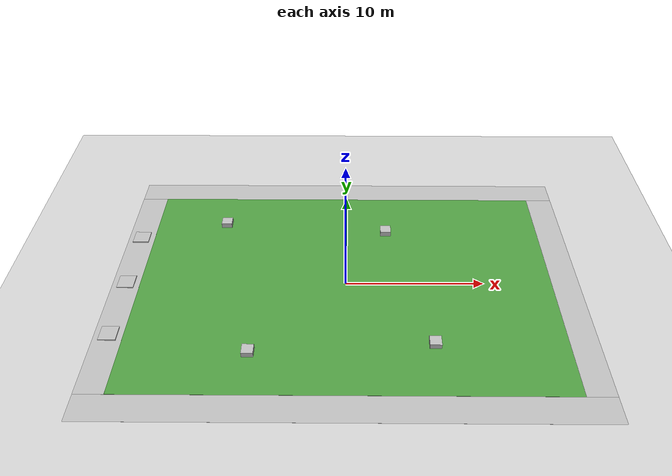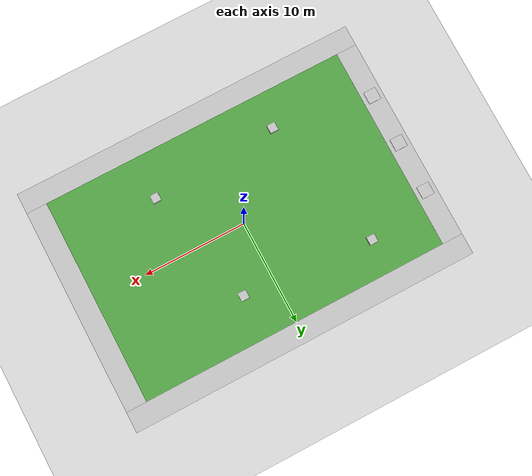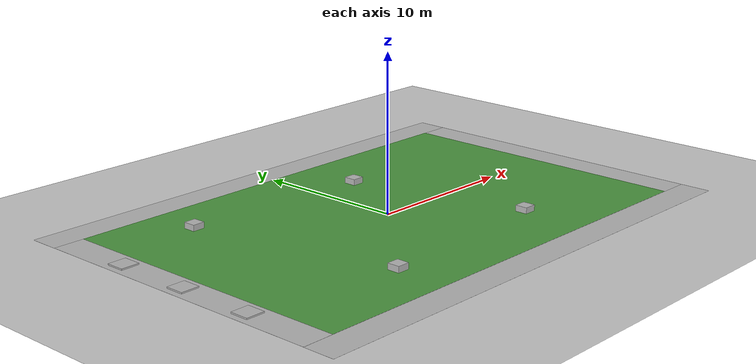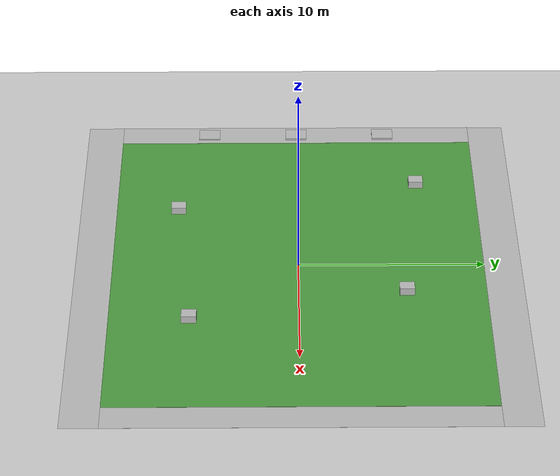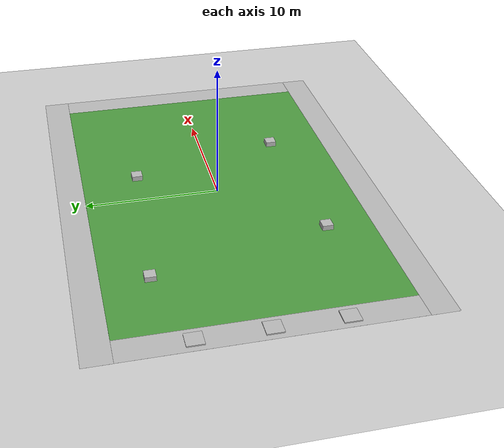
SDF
<sdf version="1.7">
 <world name="default">
  <light name="sun" type="directional">
   <pose>0 0 10 0 -0 0</pose>
   <diffuse>0.8 0.8 0.8 1</diffuse>
   <specular>0.2 0.2 0.2 1</specular>
   <attenuation>
    <range>1000</range>
    <constant>0.9</constant>
    <linear>0.01</linear>
    <quadratic>0.001</quadratic>
   </attenuation>
   <direction>-0.5 0.1 -0.9</direction>
   <spot><inner_angle>0</inner_angle><outer_angle>0</outer_angle><falloff>0</falloff></spot>
  </light>
  <model name="ground_plane">
   <static>1</static>
   <link name="link">
    <collision name="collision">
     <geometry><plane><normal>0 0 1</normal><size>100 100</size></plane></geometry>
     <surface><friction><ode><mu>100</mu><mu2>50</mu2></ode></friction></surface>
    </collision>
    <visual name="visual">
     <cast_shadows>0</cast_shadows>
     <geometry><plane><normal>0 0 1</normal><size>100 100</size></plane></geometry>
     <material>
      <script><uri>file://media/materials/scripts/gazebo.material</uri><name>Gazebo/Grey</name></script>
     </material>
    </visual>
   </link>
  </model>
  <model name="robocup_3d_field">
   <static>1</static>
   <link name="field">
    <pose>0 0 0.01 0 -0 0</pose>
    <collision name="collision">
     <geometry><plane><normal>0 0 1</normal><size>30 20</size></plane></geometry>
     <surface><friction><ode><mu>100</mu><mu2>50</mu2></ode></friction></surface>
    </collision>
    <visual name="base1">
     <pose>0 11 0.001 0 -0 0</pose>
     <cast_shadows>0</cast_shadows>
     <geometry><plane><normal>0 0 1</normal><size>34 2</size></plane></geometry>
     <material>
      <script>
       <uri>model://robocup_3Dsim_field/materials/scripts/</uri>
       <uri>model://robocup_3Dsim_field/materials/textures/</uri>
       <name>RoboCup/FieldBorder</name>
      </script>
     </material>
    </visual>
    <visual name="base2">
     <pose>0 -11 0.001 0 -0 0</pose>
     <cast_shadows>0</cast_shadows>
     <geometry><plane><normal>0 0 1</normal><size>34 2</size></plane></geometry>
     <material>
      <script>
       <uri>model://robocup_3Dsim_field/materials/scripts/</uri>
       <uri>model://robocup_3Dsim_field/materials/textures/</uri>
       <name>RoboCup/FieldBorder</name>
      </script>
     </material>
    </visual>
    <visual name="base3">
     <pose>16 0 0.001 0 -0 0</pose>
     <cast_shadows>0</cast_shadows>
     <geometry><plane><normal>0 0 1</normal><size>2 20</size></plane></geometry>
     <material>
      <script>
       <uri>model://robocup_3Dsim_field/materials/scripts/</uri>
       <uri>model://robocup_3Dsim_field/materials/textures/</uri>
       <name>RoboCup/FieldBorder</name>
      </script>
     </material>
    </visual>
    <visual name="base4">
     <pose>-16 0 0.01 0 -0 0</pose>
     <cast_shadows>0</cast_shadows>
     <geometry><plane><normal>0 0 1</normal><size>2 20</size></plane></geometry>
     <material>
      <script>
       <uri>model://robocup_3Dsim_field/materials/scripts/</uri>
       <uri>model://robocup_3Dsim_field/materials/textures/</uri>
       <name>RoboCup/FieldBorder</name>
      </script>
     </material>
    </visual>
    <visual name="carpet">
     <cast_shadows>0</cast_shadows>
     <geometry><plane><normal>0 0 1</normal><size>30 20</size></plane></geometry>
     <material>
      <script>
       <uri>model://robocup_3Dsim_field/materials/scripts/</uri>
       <uri>model://robocup_3Dsim_field/materials/textures/</uri>
       <name>RoboCup/Grass</name>
      </script>
     </material>
    </visual>
   </link>
   <pose>0 0 0.001 0 -0 0</pose>
  </model>
  <model name="number1">
   <pose>-6.41575 -6.57118 0.01 0 -0 3.14</pose>
   <static>1</static>
   <link name="link">
    <visual name="visual">
     <geometry><mesh><uri>model://number1/meshes/number.dae</uri></mesh></geometry>
     <material>
      <script>
       <uri>model://number1/materials/scripts</uri>
       <uri>model://number1/materials/textures</uri>
       <name>Number/One</name>
      </script>
     </material>
    </visual>
   </link>
  </model>
  <model name="number2">
   <pose>-9.50624 6.68296 0.01 0 -0 3.14</pose>
   <static>1</static>
   <link name="link">
    <visual name="visual">
     <geometry><mesh><uri>model://number1/meshes/number.dae</uri></mesh></geometry>
     <material>
      <script>
       <uri>model://number2/materials/scripts</uri>
       <uri>model://number2/materials/textures</uri>
       <name>Number/Two</name>
      </script>
     </material>
    </visual>
   </link>
  </model>
  <model name="number3">
   <pose>6.0077 -5.7695 0.01 0 -0 3.14</pose>
   <static>1</static>
   <link name="link">
    <visual name="visual">
     <geometry><mesh><uri>model://number1/meshes/number.dae</uri></mesh></geometry>
     <material>
      <script>
       <uri>model://number3/materials/scripts</uri>
       <uri>model://number3/materials/textures</uri>
       <name>Number/Three</name>
      </script>
     </material>
    </visual>
   </link>
  </model>
  <model name="number4">
   <pose>3.07634 5.74653 0.01 0 -0 3.14</pose>
   <static>1</static>
   <link name="link">
    <visual name="visual">
     <geometry><mesh><uri>model://number1/meshes/number.dae</uri></mesh></geometry>
     <material>
      <script>
       <uri>model://number4/materials/scripts</uri>
       <uri>model://number4/materials/textures</uri>
       <name>Number/Four</name>
      </script>
     </material>
    </visual>
   </link>
  </model>
  <model name="box_target_green">
   <pose>-16 -5 0.06 0 -0 3.14</pose>
   <static>1</static>
   <link name="link">
    <collision name="collision"><geometry><box><size>1.2 1.2 0.1</size></box></geometry></collision>
    <visual name="visual">
     <geometry>
      <mesh><uri>model://box_target_green/meshes/mesh.dae</uri><scale>0.2 0.2 0.05</scale></mesh>
     </geometry>
    </visual>
   </link>
  </model>
  <model name="box_target_green_0">
   <pose>-16 0 0.06 0 -0 3.14</pose>
   <static>1</static>
   <link name="link">
    <collision name="collision"><geometry><box><size>1.2 1.2 0.1</size></box></geometry></collision>
    <visual name="visual">
     <geometry>
      <mesh><uri>model://box_target_green/meshes/mesh.dae</uri><scale>0.2 0.2 0.05</scale></mesh>
     </geometry>
    </visual>
   </link>
  </model>
  <model name="box_target_green_1">
   <pose>-16 5 0.06 0 -0 3.14</pose>
   <static>1</static>
   <link name="link">
    <collision name="collision"><geometry><box><size>1.2 1.2 0.1</size></box></geometry></collision>
    <visual name="visual">
     <geometry>
      <mesh><uri>model://box_target_green/meshes/mesh.dae</uri><scale>0.2 0.2 0.05</scale></mesh>
     </geometry>
    </visual>
   </link>
  </model>
 </world>
</sdf>
